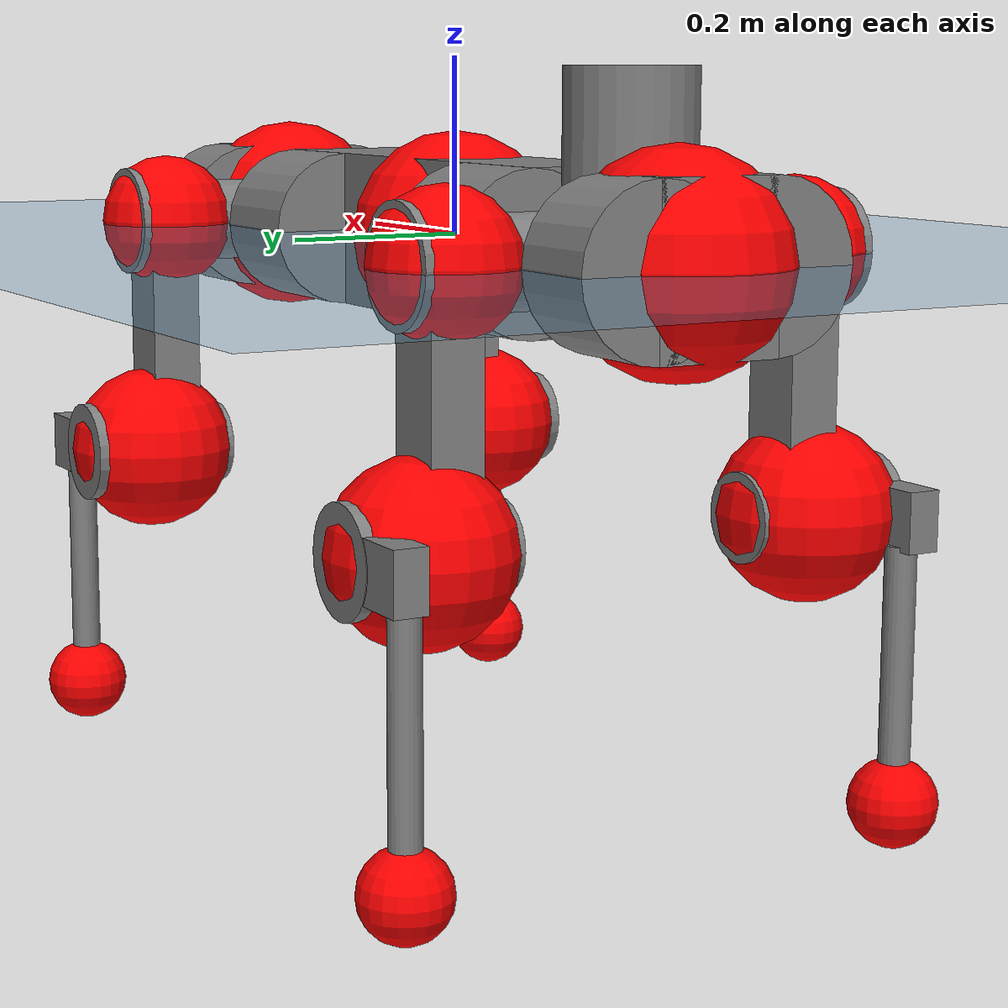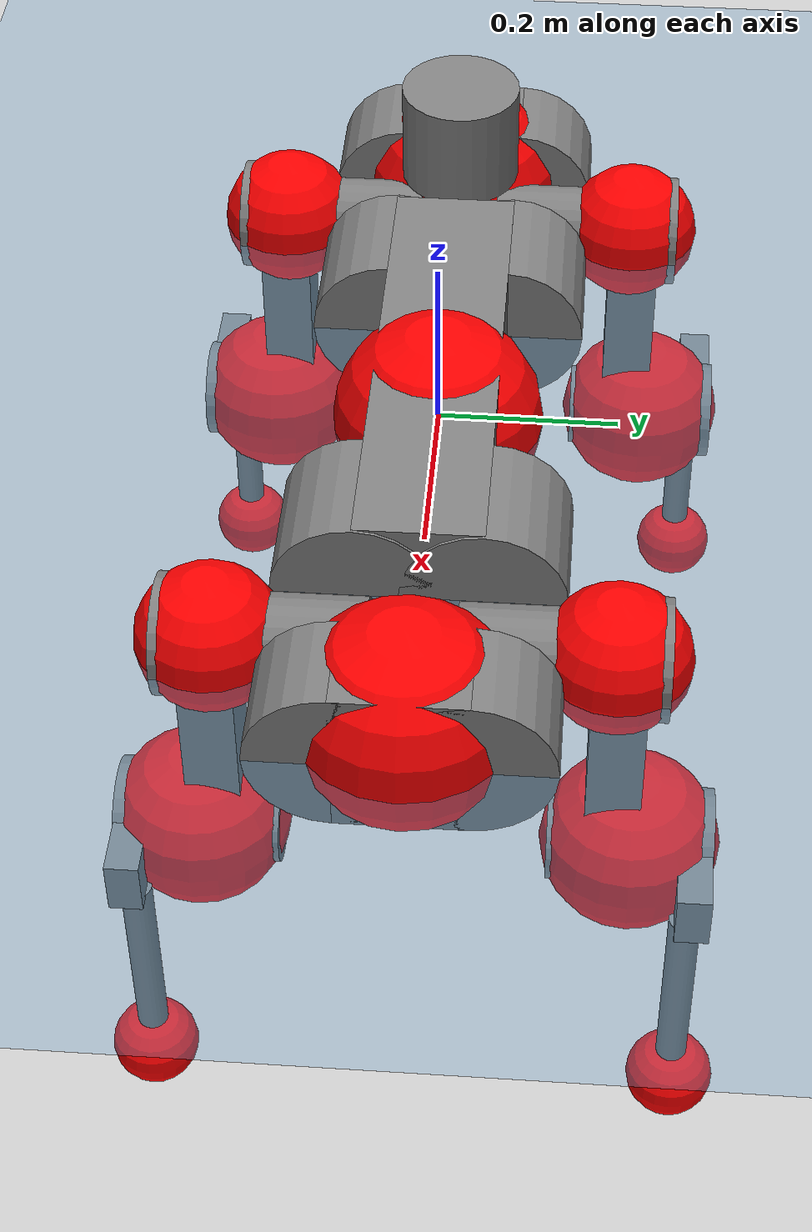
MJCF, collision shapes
<mujoco model="anymal_c">
  <compiler angle="radian" assetdir="assets" balanceinertia="true" inertiafromgeom="false"/>

  <option timestep="0.005" density="1.2" viscosity="2e-05"/>

  <size nkey="1"/>

  <visual>
    <quality shadowsize="8192"/>
    <map shadowclip="0.5"/>
  </visual>

  <default>
    <default class="/">
      <material specular="0" shininess="0.25"/>
      <geom contype="0" conaffinity="0" group="1" solref="-1000 -80"/>
      <site size="0.01 0.005 0.005" group="5"/>
      <general forcelimited="true" forcerange="-80 80" biastype="affine" gainprm="80" biasprm="0 -80 -2"/>
      <default class="anymal_c">
        <joint armature="0.01" damping="0.01" frictionloss="0.1"/>
        <default class="visual">
          <geom type="mesh" group="2"/>
          <default class="visual_zflip"/>
        </default>
        <default class="collision">
          <geom type="cylinder" group="3"/>
          <default class="foot">
            <geom size="0.03 0 0" type="sphere" condim="6" priority="1" friction="0.8 0.02 0.01" solimp="0.015 1 0.03"/>
          </default>
        </default>
      </default>
      <default class="reward_collision_sphere">
        <geom group="5" rgba="1 0 0 1"/>
      </default>
    </default>
  </default>

  <asset>
    <texture type="skybox" colorspace="auto" name="//unnamed_texture_0" builtin="gradient" rgb1="0.95 0.95 0.95" rgb2="0.95 0.95 0.95" width="100" height="600"/>
    <texture type="2d" colorspace="auto" name="texplane" builtin="checker" rgb1="0.345 0.575 0.748" rgb2="0.345 0.575 0.748" markrgb="1 1 1" width="512" height="512"/>
    <texture type="2d" colorspace="linear" name="base" file="base.png"/>
    <texture type="2d" colorspace="linear" name="top_shell" file="top_shell.png"/>
    <texture type="2d" colorspace="linear" name="bottom_shell" file="bottom_shell.png"/>
    <texture type="2d" colorspace="linear" name="remote" file="remote.png"/>
    <texture type="2d" colorspace="linear" name="hatch" file="hatch.png"/>
    <texture type="2d" colorspace="linear" name="handle" file="handle.png"/>
    <texture type="2d" colorspace="linear" name="face" file="face.png"/>
    <texture type="2d" colorspace="linear" name="battery" file="battery.png"/>
    <texture type="2d" colorspace="linear" name="lidar_cage" file="lidar_cage.png"/>
    <texture type="2d" colorspace="linear" name="depth_camera" file="depth_camera.png"/>
    <texture type="2d" colorspace="linear" name="wide_angle_camera" file="wide_angle_camera.png"/>
    <texture type="2d" colorspace="linear" name="lidar" file="lidar.png"/>
    <texture type="2d" colorspace="linear" name="drive" file="drive.png"/>
    <texture type="2d" colorspace="linear" name="hip_l" file="hip_l.png"/>
    <texture type="2d" colorspace="linear" name="shank_l" file="shank_l.png"/>
    <texture type="2d" colorspace="linear" name="foot" file="foot.png"/>
    <texture type="2d" colorspace="linear" name="thigh" file="thigh.png"/>
    <texture type="2d" colorspace="linear" name="shank_r" file="shank_r.png"/>
    <texture type="2d" colorspace="linear" name="hip_r" file="hip_r.png"/>
    <material name="MatPlane" class="/" texture="texplane" texuniform="true" texrepeat="2 2" specular="0.9" shininess="0.5"/>
    <material name="black_plastic" class="/" rgba="0.007 0.007 0.007 1"/>
    <material name="green" class="/" rgba="0.052 0.178 0.033 1"/>
    <material name="red" class="/" rgba="0.178 0.006 0.005 1"/>
    <material name="yellow" class="/" rgba="0.178 0.119 0.006 1"/>
    <material name="lwl" class="/" rgba="0.8 0.8 0.8 1"/>
    <material name="base" class="/" texture="base"/>
    <material name="top_shell" class="/" texture="top_shell"/>
    <material name="bottom_shell" class="/" texture="bottom_shell"/>
    <material name="hip_l" class="/" texture="hip_l"/>
    <material name="thigh" class="/" texture="thigh"/>
    <material name="shank_l" class="/" texture="shank_l"/>
    <material name="foot" class="/" texture="foot"/>
    <material name="hip_r" class="/" texture="hip_r"/>
    <material name="shank" class="/" texture="shank_r"/>
    <material name="hatch" class="/" texture="hatch"/>
    <material name="remote" class="/" texture="remote"/>
    <material name="handle" class="/" texture="handle"/>
    <material name="face" class="/" texture="face"/>
    <material name="depth_camera" class="/" texture="depth_camera"/>
    <material name="wide_angle_camera" class="/" texture="wide_angle_camera"/>
    <material name="battery" class="/" texture="battery"/>
    <material name="lidar_cage" class="/" texture="lidar_cage"/>
    <material name="lidar" class="/" texture="lidar"/>
    <material name="drive" class="/" texture="drive"/>
    <mesh name="base_0" class="/" file="base_0.obj"/>
    <mesh name="base_1" class="/" file="base_1.obj"/>
    <mesh name="base_2" class="/" file="base_2.obj"/>
    <mesh name="base_3" class="/" file="base_3.obj"/>
    <mesh name="base_4" class="/" file="base_4.obj"/>
    <mesh name="base_5" class="/" file="base_5.obj"/>
    <mesh name="top_shell" class="/" file="top_shell.obj"/>
    <mesh name="bottom_shell" class="/" file="bottom_shell.obj"/>
    <mesh name="remote" class="/" file="remote.obj"/>
    <mesh name="handle" class="/" file="handle.obj"/>
    <mesh name="face" class="/" file="face.obj"/>
    <mesh name="wide_angle_camera" class="/" file="wide_angle_camera.obj"/>
    <mesh name="depth_camera" class="/" file="depth_camera.obj"/>
    <mesh name="battery" class="/" file="battery.obj"/>
    <mesh name="lidar_cage" class="/" file="lidar_cage.obj"/>
    <mesh name="lidar" class="/" file="lidar.obj"/>
    <mesh name="drive" class="/" file="drive.obj"/>
    <mesh name="hip_l" class="/" file="hip_l.obj"/>
    <mesh name="thigh" class="/" file="thigh.obj"/>
    <mesh name="shank_l" class="/" file="shank_l.obj"/>
    <mesh name="foot" class="/" file="foot.obj"/>
    <mesh name="hip_r" class="/" file="hip_r.obj"/>
    <mesh name="hatch" class="/" file="hatch.obj"/>
    <mesh name="shank_r" class="/" file="shank_r.obj"/>
  </asset>

  <worldbody>
    <geom name="floor" class="/" size="100 100 0.125" type="plane" group="0" material="MatPlane"/>
    <light name="toplight_shadow" class="/" pos="0 0 5" dir="0.0990148 0.0990148 -0.990148" type="directional" ambient="0.04 0.04 0.04" diffuse="0.55 0.55 0.55" specular="0.12 0.12 0.12"/>
    <light name="toplight_fill" class="/" pos="0 0 5" dir="0.0990148 0.0990148 -0.990148" type="directional" castshadow="false" ambient="0.04 0.04 0.04" diffuse="0.3 0.3 0.3" specular="0.08 0.08 0.08"/>
    <body name="trunk" childclass="anymal_c" pos="-0.00042133 1.07958e-05 -2.92318e-05" quat="1 0.000263287 5.03487e-06 -1.30125e-06">
      <inertial pos="0.00131623 2.24171e-05 0.0492647" quat="0.500219 0.497933 0.501318 0.500524" mass="18.0853" diaginertia="0.62491 0.507897 0.202922"/>
      <joint name="//unnamed_joint_0" type="free" armature="0" damping="0" frictionloss="0"/>
      <geom name="//unnamed_geom_1" class="visual" material="green" mesh="base_0"/>
      <geom name="//unnamed_geom_2" class="visual" material="yellow" mesh="base_1"/>
      <geom name="//unnamed_geom_3" class="visual" material="red" mesh="base_2"/>
      <geom name="//unnamed_geom_4" class="visual" material="black_plastic" mesh="base_3"/>
      <geom name="//unnamed_geom_5" class="visual" material="lwl" mesh="base_4"/>
      <geom name="//unnamed_geom_6" class="visual" material="base" mesh="base_5"/>
      <geom name="trunk_1" class="collision" size="0.284436 0.0686571 0.0882734" type="box"/>
      <geom name="trunk_2" class="collision" size="0.0882734 0.0711091" pos="0.216639 0.0672453 0" quat="0.707107 0 0.707107 0"/>
      <geom name="trunk_3" class="collision" size="0.0882734 0.0711091" pos="-0.216639 0.0672453 0" quat="0.707107 0 0.707107 0"/>
      <geom name="trunk_4" class="collision" size="0.0882734 0.0711091" pos="0.216639 -0.0672453 0" quat="0.707107 0 0.707107 0"/>
      <geom name="trunk_5" class="collision" size="0.0882734 0.0711091" pos="-0.216639 -0.0672453 0" quat="0.707107 0 0.707107 0"/>
      <geom name="//unnamed_geom_12" class="visual" material="top_shell" mesh="top_shell"/>
      <geom name="//unnamed_geom_13" class="visual" material="bottom_shell" mesh="bottom_shell"/>
      <geom name="//unnamed_geom_14" class="visual" material="remote" mesh="remote"/>
      <geom name="//unnamed_geom_15" class="visual" material="handle" mesh="handle"/>
      <geom name="//unnamed_geom_16" class="visual" pos="0.41286 0 0" quat="1 0 0 0" material="face" mesh="face"/>
      <geom name="trunk_6" class="collision" size="0.0539448 0.0686571 0.0882734" pos="0.467642 0 0" type="box"/>
      <geom name="//unnamed_geom_18" class="collision" size="0.0882734 0.0539448" pos="0.467642 0.0672453 0" quat="0.707107 0 0.707107 0"/>
      <geom name="//unnamed_geom_19" class="collision" size="0.0882734 0.0539448" pos="0.467642 -0.0672453 0" quat="0.707107 0 0.707107 0"/>
      <geom name="//unnamed_geom_20" class="visual" pos="0.459823 0 -0.0287058" quat="0.965926 0 0.258819 0" material="depth_camera" mesh="depth_camera"/>
      <geom name="//unnamed_geom_21" class="visual" pos="0.51097 0 0.0147567" material="wide_angle_camera" mesh="wide_angle_camera"/>
      <geom name="//unnamed_geom_22" class="visual_zflip" pos="-0.41286 0 0" quat="0 0 0 1" material="face" mesh="face"/>
      <geom name="trunk_7" class="collision" size="0.0539448 0.0686571 0.0882734" pos="-0.467642 0 0" quat="0 0 0 1" type="box"/>
      <geom name="//unnamed_geom_24" class="collision" size="0.0882734 0.0539448" pos="-0.467642 -0.0672453 0" quat="0 -0.707107 0 0.707107"/>
      <geom name="//unnamed_geom_25" class="collision" size="0.0882734 0.0539448" pos="-0.467642 0.0672453 0" quat="0 -0.707107 0 0.707107"/>
      <geom name="//unnamed_geom_26" class="visual" pos="-0.459823 0 -0.0287058" quat="0 -0.258819 0 0.965926" material="depth_camera" mesh="depth_camera"/>
      <geom name="//unnamed_geom_27" class="visual_zflip" pos="-0.51097 0 0.0147567" quat="0 0 0 1" material="wide_angle_camera" mesh="wide_angle_camera"/>
      <geom name="//unnamed_geom_28" class="visual" material="battery" mesh="battery"/>
      <geom name="//unnamed_geom_29" class="visual" pos="0 0.0729862 0.0287144" quat="0.683013 -0.183013 0.183013 0.683013" material="depth_camera" mesh="depth_camera"/>
      <geom name="//unnamed_geom_30" class="visual" pos="0 -0.0729862 0.0287144" quat="0.683013 0.183013 0.183013 -0.683013" material="depth_camera" mesh="depth_camera"/>
      <geom name="//unnamed_geom_31" class="visual" pos="-0.36256 0 0.0724529" quat="1 0 0 0" material="lidar_cage" mesh="lidar_cage"/>
      <geom name="trunk_8" class="collision" size="0.0686571 0.0588489" pos="-0.36256 0 0.131598"/>
      <geom name="//unnamed_geom_33" class="visual" pos="-0.36256 -1.39061e-05 0.140174" quat="0.707107 0 0 -0.707107" material="lidar" mesh="lidar"/>
      <geom name="//unnamed_geom_34" class="visual" pos="0.298713 0.0999163 -4.33093e-10" quat="0.258819 0.965926 0 0" material="drive" mesh="drive"/>
      <geom name="//unnamed_geom_35" class="visual" pos="0.298713 -0.0999163 4.33093e-10" quat="0.258819 -0.965926 0 0" material="drive" mesh="drive"/>
      <geom name="//unnamed_geom_36" class="visual" pos="-0.298713 0.0999163 4.33093e-10" quat="0 0 0.965926 -0.258819" material="drive" mesh="drive"/>
      <geom name="//unnamed_geom_37" class="visual" pos="-0.298713 -0.0999163 -4.33093e-10" quat="0 0 -0.965926 -0.258819" material="drive" mesh="drive"/>
      <geom name="//unnamed_geom_38" class="visual" pos="0.115541 0 0.0719601" quat="1 0 0 0" material="hatch" mesh="hatch"/>
      <geom name="//unnamed_geom_39" class="reward_collision_sphere" size="0.117698"/>
      <geom name="//unnamed_geom_40" class="reward_collision_sphere" size="0.117698" pos="0.44822 0 0"/>
      <geom name="//unnamed_geom_41" class="reward_collision_sphere" size="0.117698" pos="-0.44822 0 0"/>
      <site name="imu" pos="0.248863 0.00766468 0.0446788" size="0.00980815"/>
      <camera name="track" pos="0 -1.9213 0" quat="0.707107 0.707107 0 0" mode="trackcom"/>
      <camera name="ego_camera" pos="0.44822 0 -0.0394302" quat="-0.5 -0.5 0.5 0.5"/>
      <body name="LF_HIP" pos="0.299869 0.101003 0.0006956" quat="0.258739 0.965947 -3.4672e-05 6.09018e-06">
        <inertial pos="0.0565504 -0.0136755 -0.007807" quat="-0.127975 0.709782 -0.135274 0.679362" mass="2.56878" diaginertia="0.00568938 0.00400196 0.00303141"/>
        <joint name="LF_HAA" pos="0 0 0" axis="1 -0.000113433 0.00038666" range="-0.718878 0.48189" armature="0.00973723" damping="0.00594564" frictionloss="0.102372"/>
        <geom name="//unnamed_geom_42" class="visual" pos="0 -2.54769e-05 4.18456e-06" quat="0.258819 -0.965926 0 0" material="hip_l" mesh="hip_l"/>
        <geom name="//unnamed_geom_43" class="visual" pos="0.059663 -0.0718373 -0.041661" quat="0.183013 -0.683013 0.683013 0.183013" material="drive" mesh="drive"/>
        <geom name="//unnamed_geom_44" class="collision" size="0.0490408 0.0686571" pos="0.059663 -0.0114892 -0.00680663" quat="-0.353553 -0.612372 0.612372 -0.353553"/>
        <body name="LF_THIGH" pos="0.0607913 -0.0698823 -0.0420646" quat="0.183021 -0.683011 0.683014 0.183006">
          <inertial pos="0.0306394 0.000129104 -0.242957" quat="0.993029 -0.0074714 -0.0800098 0.0862379" mass="2.93601" diaginertia="0.0297414 0.0243202 0.00391769"/>
          <joint name="LF_HFE" pos="0 0 0" axis="0.999999 -0.00156477 0.000272249" stiffness="0.00321909" range="-3.14869 3.12045" armature="0.0095826" damping="0.00550908" frictionloss="0.102333"/>
          <geom name="//unnamed_geom_45" class="visual" pos="0.000704239 1.10972e-06 0" quat="0.707107 0 0 -0.707107" material="thigh" mesh="thigh"/>
          <geom name="//unnamed_geom_46" class="collision" size="0.063753 0.0392326" pos="0.0398417 0 0" quat="0.5 0.5 -0.5 -0.5"/>
          <geom name="//unnamed_geom_47" class="collision" size="0.0367806 0.0294245 0.138603" pos="0.0298813 0 -0.139301" quat="0.707107 0 0 -0.707107" type="box"/>
          <geom name="//unnamed_geom_48" class="visual" pos="0.0999032 0 -0.28094" quat="1 0 0 0" material="drive" mesh="drive"/>
          <geom name="//unnamed_geom_49" class="collision" size="0.0490408 0.0686571" pos="0.0301801 0 -0.28094" quat="0.707107 0 0.707107 0"/>
          <geom name="//unnamed_geom_50" class="reward_collision_sphere" size="0.0784652" pos="0.0249011 0 0"/>
          <body name="LF_SHANK" pos="0.100544 -0.000556569 -0.281135" quat="1 -0.000148398 -0.000175776 -8.2989e-05">
            <inertial pos="0.00548548 -0.058311 -0.0789445" quat="0.992915 -0.116006 -0.00203315 -0.0256663" mass="0.551818" diaginertia="0.00996339 0.00750176 0.00104281"/>
            <joint name="LF_KFE" pos="0 0 0" axis="1 -0.000122406 -0.000300556" range="-3.15824 3.14159" armature="0.00984722" damping="0.00850525" frictionloss="0.0990643"/>
            <geom name="//unnamed_geom_51" class="visual" pos="0.000229637 0.00122444 0" quat="0.707107 0 0 -0.707107" material="shank_l" mesh="shank_l"/>
            <geom name="LF_kfe_act" class="collision" size="0.0588489 0.0196163" pos="0.0199209 0 0" quat="0.5 0.5 -0.5 -0.5"/>
            <geom name="//unnamed_geom_53" class="collision" size="0.0563959 0.0331025 0.0186355" pos="0.0199209 -0.0552363 0" quat="0.5 0.5 -0.5 -0.5" type="box"/>
            <geom name="//unnamed_geom_54" class="visual" pos="0.0129983 -0.0840944 -0.333155" quat="0.382683 0 0 -0.92388" material="foot" mesh="foot"/>
            <geom name="LF_calf" class="collision" size="0.0171643 0.138542" pos="0.0129984 -0.084489 -0.166578" quat="0.707107 0 0 -0.707107"/>
            <geom name="LF_foot" class="foot" size="0.0302666" pos="0.0129984 -0.084489 -0.310976" quat="0.707107 0 0 -0.707107"/>
            <geom name="//unnamed_geom_57" class="reward_collision_sphere" size="0.0980815" pos="-0.0498022 0 0"/>
            <geom name="//unnamed_geom_58" class="reward_collision_sphere" size="0.0490408" pos="0.0129984 -0.084489 -0.310976"/>
            <site name="LF_foot" class="foot" pos="0.0129984 -0.084489 -0.310976" quat="0.707107 0 0 -0.707107" size="0.00980815"/>
          </body>
        </body>
      </body>
      <body name="RF_HIP" pos="0.299064 -0.100474 -2.57497e-05" quat="0.258816 -0.965927 8.46586e-06 1.40362e-05">
        <inertial pos="0.0574614 0.0141928 -0.00736964" quat="0.13498 0.681363 0.128193 0.707878" mass="2.64477" diaginertia="0.00580976 0.00405033 0.00310331"/>
        <joint name="RF_HAA" pos="0 0 0" axis="0.99999 0.00364458 0.00271967" range="-0.487455 0.721404" armature="0.00983778" damping="0.0118689" frictionloss="0.0973799"/>
        <geom name="//unnamed_geom_59" class="visual" pos="0 2.54767e-05 4.18455e-06" quat="0.258819 0.965926 0 0" material="hip_r" mesh="hip_r"/>
        <geom name="//unnamed_geom_60" class="visual" pos="0.059663 0.0718373 -0.041661" quat="0.183013 0.683013 0.683013 -0.183013" material="drive" mesh="drive"/>
        <geom name="//unnamed_geom_61" class="collision" size="0.0490408 0.0686571" pos="0.059663 0.0114892 -0.00680663" quat="-0.353553 0.612372 0.612372 0.353553"/>
        <body name="RF_THIGH" pos="0.0591697 0.0701743 -0.0415978" quat="0.183087 0.682813 0.683157 -0.183145">
          <inertial pos="0.0310632 -0.000226904 -0.241141" quat="0.992835 -0.00214221 -0.0827612 0.0861687" mass="2.85887" diaginertia="0.0298185 0.0244394 0.00388366"/>
          <joint name="RF_HFE" pos="0 0 0" axis="1 2.49058e-05 -0.000303354" stiffness="0.00869166" range="-3.14181 3.13091" armature="0.0102218" damping="0.0100174" frictionloss="0.0961198"/>
          <geom name="//unnamed_geom_62" class="visual" pos="0.000704239 1.10972e-06 0" quat="0.707107 0 0 -0.707107" material="thigh" mesh="thigh"/>
          <geom name="//unnamed_geom_63" class="collision" size="0.063753 0.0392326" pos="0.0398417 0 0" quat="0.5 0.5 0.5 0.5"/>
          <geom name="//unnamed_geom_64" class="collision" size="0.0367806 0.0294245 0.138603" pos="0.0298813 0 -0.139301" quat="0.707107 0 0 0.707107" type="box"/>
          <geom name="//unnamed_geom_65" class="visual" pos="0.0999032 0 -0.28094" quat="1 0 0 0" material="drive" mesh="drive"/>
          <geom name="//unnamed_geom_66" class="collision" size="0.0490408 0.0686571" pos="0.0301801 0 -0.28094" quat="0.707107 0 0.707107 0"/>
          <geom name="//unnamed_geom_67" class="reward_collision_sphere" size="0.0784652" pos="0.0249011 0 0"/>
          <body name="RF_SHANK" pos="0.100642 0.000100482 -0.281321" quat="1 0.000327393 0.000131305 0.000146689">
            <inertial pos="0.00634843 0.0588252 -0.079333" quat="0.993162 0.114318 0.000471613 0.0236542" mass="0.544882" diaginertia="0.0098427 0.00755327 0.001032"/>
            <joint name="RF_KFE" pos="0 0 0" axis="0.999993 0.00381635 -0.000197804" range="-3.13774 3.15468" armature="0.00952258" damping="0.00917553" frictionloss="0.0954005"/>
            <geom name="//unnamed_geom_68" class="visual" pos="0.000229636 -0.00122443 0" quat="0.707107 0 0 0.707107" material="shank" mesh="shank_r"/>
            <geom name="RF_kfe_act" class="collision" size="0.0588489 0.0196163" pos="0.0199209 0 0" quat="0.5 0.5 0.5 0.5"/>
            <geom name="//unnamed_geom_70" class="collision" size="0.0563959 0.0331025 0.0186355" pos="0.0199209 0.0552363 0" quat="0.5 0.5 0.5 0.5" type="box"/>
            <geom name="//unnamed_geom_71" class="visual" pos="0.0129984 0.0840944 -0.333155" quat="0.382683 0 0 0.92388" material="foot" mesh="foot"/>
            <geom name="RF_calf" class="collision" size="0.0171643 0.138542" pos="0.0129984 0.084489 -0.166578" quat="0.707107 0 0 0.707107"/>
            <geom name="RF_foot" class="foot" size="0.0292391" pos="0.0129984 0.084489 -0.310976" quat="0.707107 0 0 0.707107"/>
            <geom name="//unnamed_geom_74" class="reward_collision_sphere" size="0.0980815" pos="-0.0498022 0 0"/>
            <geom name="//unnamed_geom_75" class="reward_collision_sphere" size="0.0490408" pos="0.0129984 0.084489 -0.310976"/>
            <site name="RF_foot" class="foot" pos="0.0129984 0.084489 -0.310976" quat="0.707107 0 0 0.707107" size="0.00980815"/>
          </body>
        </body>
      </body>
      <body name="LH_HIP" pos="-0.298128 0.100911 0.000398166" quat="0.000162274 -6.05116e-05 0.965878 -0.258998">
        <inertial pos="0.0566193 0.0136194 -0.00870663" quat="0.137881 0.67825 0.127718 0.71039" mass="2.63343" diaginertia="0.00584265 0.00401767 0.00310701"/>
        <joint name="LH_HAA" pos="0 0 0" axis="1 -0.000152693 -0.000652016" stiffness="0.00106715" range="-0.497683 0.719266" armature="0.00984284" damping="0.00602507" frictionloss="0.0979487"/>
        <geom name="//unnamed_geom_76" class="visual" pos="0 2.54767e-05 4.18455e-06" quat="-0.258819 -0.965926 0 0" material="hip_r" mesh="hip_r"/>
        <geom name="//unnamed_geom_77" class="visual" pos="0.059663 0.0718373 -0.041661" quat="0.183013 0.683013 0.683013 -0.183013" material="drive" mesh="drive"/>
        <geom name="//unnamed_geom_78" class="collision" size="0.0490408 0.0686571" pos="0.059663 0.0114892 -0.00680663" quat="-0.353553 0.612372 0.612372 0.353553"/>
        <body name="LH_THIGH" pos="0.0589501 0.0703532 -0.0418338" quat="0.182922 0.683067 0.682976 -0.183039">
          <inertial pos="0.029858 1.54241e-05 -0.242424" quat="0.992844 -0.00538843 -0.080206 0.088315" mass="2.93913" diaginertia="0.0296833 0.0244467 0.00392663"/>
          <joint name="LH_HFE" pos="0 0 0" axis="0.999999 0.000648421 0.00102793" range="-3.1264 3.1573" armature="0.0100403" damping="0.0121481" frictionloss="0.0975835"/>
          <geom name="//unnamed_geom_79" class="visual" pos="0.000704239 1.10972e-06 0" quat="0.707107 0 0 -0.707107" material="thigh" mesh="thigh"/>
          <geom name="//unnamed_geom_80" class="collision" size="0.063753 0.0392326" pos="0.0398417 0 0" quat="0.5 0.5 -0.5 -0.5"/>
          <geom name="//unnamed_geom_81" class="collision" size="0.0367806 0.0294245 0.138603" pos="0.0298813 0 -0.139301" quat="0.707107 0 0 -0.707107" type="box"/>
          <geom name="//unnamed_geom_82" class="visual" pos="0.0999032 0 -0.28094" quat="1 0 0 0" material="drive" mesh="drive"/>
          <geom name="//unnamed_geom_83" class="collision" size="0.0490408 0.0686571" pos="0.0301801 0 -0.28094" quat="0.707107 0 0.707107 0"/>
          <geom name="//unnamed_geom_84" class="reward_collision_sphere" size="0.0784652" pos="0.0249011 0 0"/>
          <body name="LH_SHANK" pos="0.100092 -0.000475263 -0.280941" quat="1 2.18416e-05 7.15318e-06 -7.15746e-05">
            <inertial pos="0.00471296 0.0585825 -0.0795684" quat="0.993093 0.115341 0.00103049 0.0214964" mass="0.561748" diaginertia="0.0101949 0.00762781 0.0010571"/>
            <joint name="LH_KFE" pos="0 0 0" axis="0.999998 0.00195115 -0.000678758" stiffness="0.000420906" range="-3.15113 3.1575" armature="0.00992716" damping="0.00783665" frictionloss="0.100213"/>
            <geom name="//unnamed_geom_85" class="visual" pos="0.000229636 -0.00122443 0" quat="-0.707107 0 0 -0.707107" material="shank" mesh="shank_r"/>
            <geom name="LH_kfe_act" class="collision" size="0.0588489 0.0196163" pos="0.0199209 0 0" quat="0.5 0.5 -0.5 -0.5"/>
            <geom name="//unnamed_geom_87" class="collision" size="0.0563959 0.0331025 0.0186355" pos="0.0199209 0.0552363 0" quat="0.5 0.5 -0.5 -0.5" type="box"/>
            <geom name="//unnamed_geom_88" class="visual" pos="0.0129984 0.0840944 -0.333155" quat="-0.382683 0 0 -0.92388" material="foot" mesh="foot"/>
            <geom name="LH_calf" class="collision" size="0.0171643 0.138542" pos="0.0129984 0.084489 -0.166578" quat="0.707107 0 0 -0.707107"/>
            <geom name="LH_foot" class="foot" size="0.0296674" pos="0.0129984 0.084489 -0.310976" quat="0.707107 0 0 -0.707107"/>
            <geom name="//unnamed_geom_91" class="reward_collision_sphere" size="0.0980815" pos="-0.0498022 0 0"/>
            <geom name="//unnamed_geom_92" class="reward_collision_sphere" size="0.0490408" pos="0.0129984 0.084489 -0.310976"/>
            <site name="LH_foot" class="foot" pos="0.0129984 0.084489 -0.310976" quat="0.707107 0 0 -0.707107" size="0.00980815"/>
          </body>
        </body>
      </body>
      <body name="RH_HIP" pos="-0.297768 -0.0996338 -0.000447239" quat="-1.8749e-05 3.77527e-05 -0.965921 -0.258837">
        <inertial pos="0.0573321 -0.0155654 -0.00888901" quat="-0.125331 0.712694 -0.132502 0.67735" mass="2.58312" diaginertia="0.00568997 0.00399308 0.00302831"/>
        <joint name="RH_HAA" pos="0 0 0" axis="0.999998 -0.00156071 0.00138895" stiffness="0.000220485" range="-0.723645 0.475684" armature="0.00999962" damping="0.0145115" frictionloss="0.097805"/>
        <geom name="//unnamed_geom_93" class="visual" pos="0 -2.54769e-05 4.18456e-06" quat="-0.258819 0.965926 0 0" material="hip_l" mesh="hip_l"/>
        <geom name="//unnamed_geom_94" class="visual" pos="0.059663 -0.0718373 -0.041661" quat="-0.183013 0.683013 -0.683013 -0.183013" material="drive" mesh="drive"/>
        <geom name="//unnamed_geom_95" class="collision" size="0.0490408 0.0686571" pos="0.059663 -0.0114892 -0.00680663" quat="0.353553 0.612372 -0.612372 0.353553"/>
        <body name="RH_THIGH" pos="0.0600832 -0.0703035 -0.0419527" quat="-0.183081 0.682871 -0.68317 -0.182884">
          <inertial pos="0.0307492 -0.000871626 -0.241551" quat="0.99314 -0.00501706 -0.0808505 0.0843215" mass="2.95579" diaginertia="0.0302489 0.0248148 0.00393384"/>
          <joint name="RH_HFE" pos="0 0 0" axis="0.999997 0.00218919 0.000507737" range="-3.15775 3.13658" armature="0.00960484" damping="0.00406095" frictionloss="0.0988277"/>
          <geom name="//unnamed_geom_96" class="visual" pos="0.000704239 1.10972e-06 0" quat="0.707107 0 0 -0.707107" material="thigh" mesh="thigh"/>
          <geom name="//unnamed_geom_97" class="collision" size="0.063753 0.0392326" pos="0.0398417 0 0" quat="0.5 0.5 0.5 0.5"/>
          <geom name="//unnamed_geom_98" class="collision" size="0.0367806 0.0294245 0.138603" pos="0.0298813 0 -0.139301" quat="0.707107 0 0 0.707107" type="box"/>
          <geom name="//unnamed_geom_99" class="visual" pos="0.0999032 0 -0.28094" quat="1 0 0 0" material="drive" mesh="drive"/>
          <geom name="//unnamed_geom_100" class="collision" size="0.0490408 0.0686571" pos="0.0301801 0 -0.28094" quat="0.707107 0 0.707107 0"/>
          <geom name="//unnamed_geom_101" class="reward_collision_sphere" size="0.0784652" pos="0.0249011 0 0"/>
          <body name="RH_SHANK" pos="0.0997747 0.000162702 -0.281211" quat="1 -2.70419e-06 -8.83647e-06 2.16639e-05">
            <inertial pos="0.0050587 -0.0582841 -0.0791812" quat="0.992805 -0.116704 -0.00410898 -0.0264711" mass="0.554575" diaginertia="0.0100305 0.00755367 0.00105118"/>
            <joint name="RH_KFE" pos="0 0 0" axis="0.999991 -0.00165194 0.00394995" range="-3.13185 3.13527" armature="0.00982703" damping="0.0092839" frictionloss="0.0955573"/>
            <geom name="//unnamed_geom_102" class="visual" pos="0.000229637 0.00122444 0" quat="0.707107 0 0 -0.707107" material="shank_l" mesh="shank_l"/>
            <geom name="RH_kfe_act" class="collision" size="0.0588489 0.0196163" pos="0.0199209 0 0" quat="0.5 0.5 0.5 0.5"/>
            <geom name="//unnamed_geom_104" class="collision" size="0.0563959 0.0331025 0.0186355" pos="0.0199209 -0.0552363 0" quat="0.5 0.5 0.5 0.5" type="box"/>
            <geom name="//unnamed_geom_105" class="visual" pos="0.0129983 -0.0840944 -0.333155" quat="0.382683 0 0 -0.92388" material="foot" mesh="foot"/>
            <geom name="RH_calf" class="collision" size="0.0171643 0.138542" pos="0.0129984 -0.084489 -0.166578" quat="0.707107 0 0 0.707107"/>
            <geom name="RH_foot" class="foot" size="0.0288038" pos="0.0129984 -0.084489 -0.310976" quat="0.707107 0 0 0.707107"/>
            <geom name="//unnamed_geom_108" class="reward_collision_sphere" size="0.0980815" pos="-0.0498022 0 0"/>
            <geom name="//unnamed_geom_109" class="reward_collision_sphere" size="0.0490408" pos="0.0129984 -0.084489 -0.310976"/>
            <site name="RH_foot" class="foot" pos="0.0129984 -0.084489 -0.310976" quat="0.707107 0 0 0.707107" size="0.00980815"/>
          </body>
        </body>
      </body>
    </body>
  </worldbody>

  <contact>
    <pair class="/" geom1="floor" geom2="LF_foot" name="//unnamed_contact_0"/>
    <pair class="/" geom1="floor" geom2="RF_foot" name="//unnamed_contact_1"/>
    <pair class="/" geom1="floor" geom2="LH_foot" name="//unnamed_contact_2"/>
    <pair class="/" geom1="floor" geom2="RH_foot" name="//unnamed_contact_3"/>
  </contact>

  <actuator>
    <general name="LF_HAA" class="/" joint="LF_HAA" forcerange="-81.2717 81.2717" gainprm="80.8894" biasprm="0 -80.8894 -1.94127"/>
    <general name="LF_HFE" class="/" joint="LF_HFE" forcerange="-77.5849 77.5849" gainprm="80.8894" biasprm="0 -80.8894 -1.94127"/>
    <general name="LF_KFE" class="/" joint="LF_KFE" forcerange="-78.1575 78.1575" gainprm="80.8894" biasprm="0 -80.8894 -1.94127"/>
    <general name="RF_HAA" class="/" joint="RF_HAA" forcerange="-78.3018 78.3018" gainprm="80.8894" biasprm="0 -80.8894 -1.94127"/>
    <general name="RF_HFE" class="/" joint="RF_HFE" forcerange="-77.7527 77.7527" gainprm="80.8894" biasprm="0 -80.8894 -1.94127"/>
    <general name="RF_KFE" class="/" joint="RF_KFE" forcerange="-77.3163 77.3163" gainprm="80.8894" biasprm="0 -80.8894 -1.94127"/>
    <general name="LH_HAA" class="/" joint="LH_HAA" forcerange="-78.8625 78.8625" gainprm="80.8894" biasprm="0 -80.8894 -1.94127"/>
    <general name="LH_HFE" class="/" joint="LH_HFE" forcerange="-81.3351 81.3351" gainprm="80.8894" biasprm="0 -80.8894 -1.94127"/>
    <general name="LH_KFE" class="/" joint="LH_KFE" forcerange="-77.9468 77.9468" gainprm="80.8894" biasprm="0 -80.8894 -1.94127"/>
    <general name="RH_HAA" class="/" joint="RH_HAA" forcerange="-79.4676 79.4676" gainprm="80.8894" biasprm="0 -80.8894 -1.94127"/>
    <general name="RH_HFE" class="/" joint="RH_HFE" forcerange="-78.2938 78.2938" gainprm="80.8894" biasprm="0 -80.8894 -1.94127"/>
    <general name="RH_KFE" class="/" joint="RH_KFE" forcerange="-80.172 80.172" gainprm="80.8894" biasprm="0 -80.8894 -1.94127"/>
  </actuator>

  <sensor>
    <gyro site="imu" name="imu_angular_velocity"/>
    <velocimeter site="imu" name="imu_linear_velocity"/>
    <framelinvel objtype="site" objname="LF_foot" name="LF_foot_global_linear_velocity"/>
    <framelinvel objtype="site" objname="RF_foot" name="RF_foot_global_linear_velocity"/>
    <framelinvel objtype="site" objname="LH_foot" name="LH_foot_global_linear_velocity"/>
    <framelinvel objtype="site" objname="RH_foot" name="RH_foot_global_linear_velocity"/>
  </sensor>

  <keyframe>
    <key name="home" qpos="0 0 0.55 1 0 0 0 0 0.4 -0.8 0 -0.4 0.8 0 -0.4 0.8 0 0.4 -0.8"/>
  </keyframe>
</mujoco>
